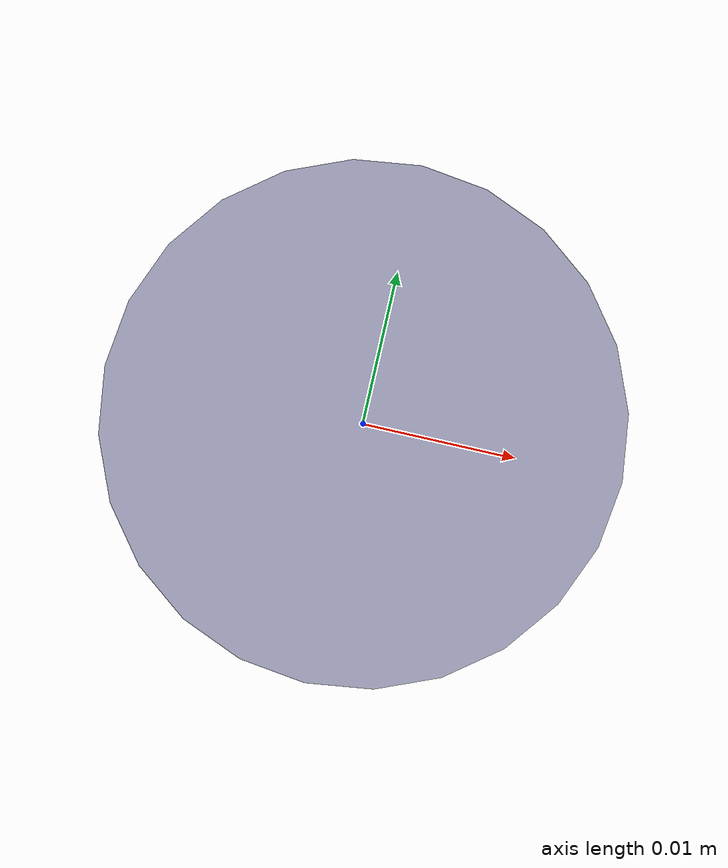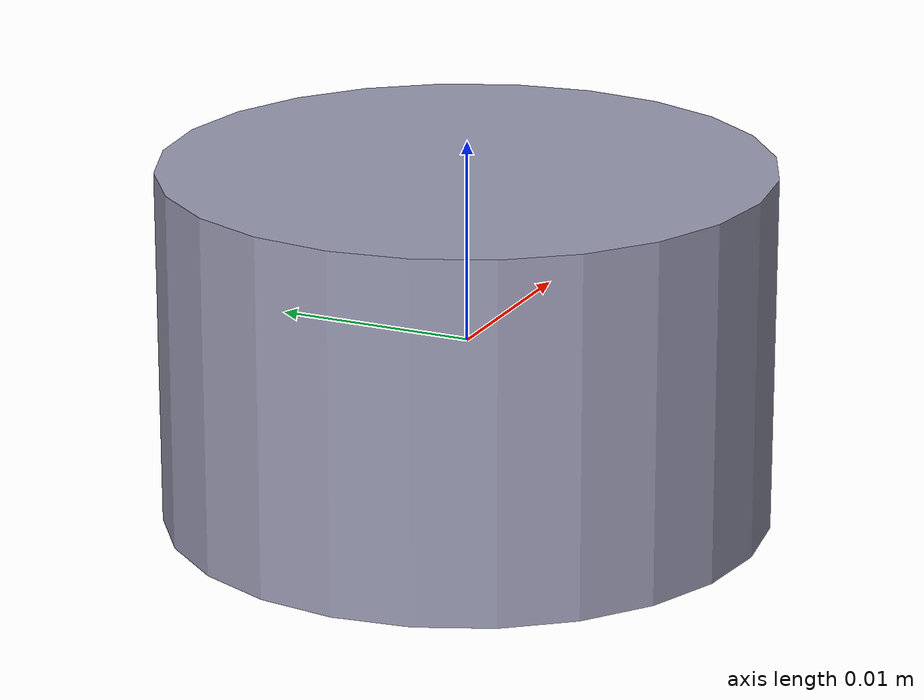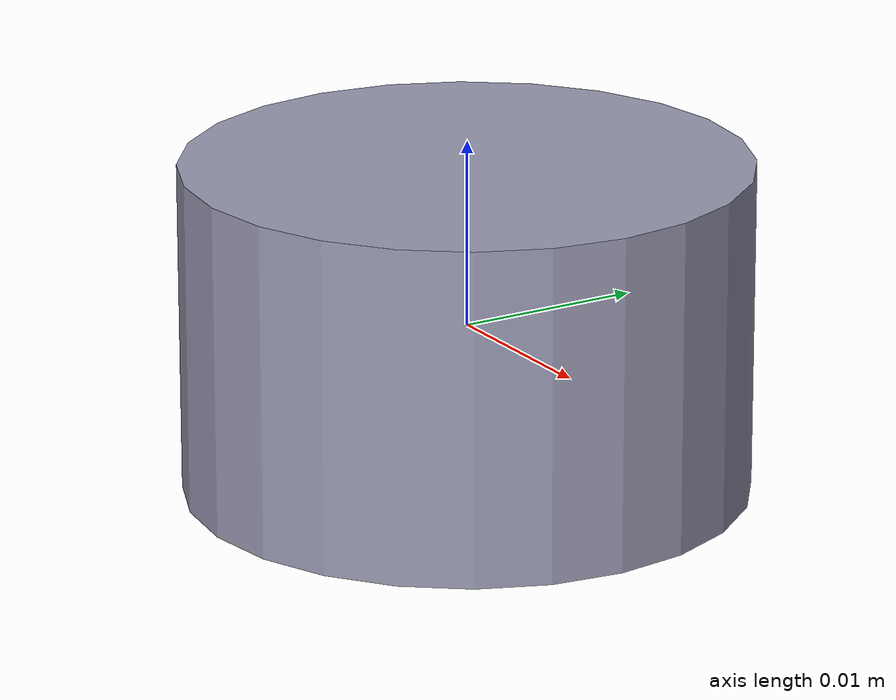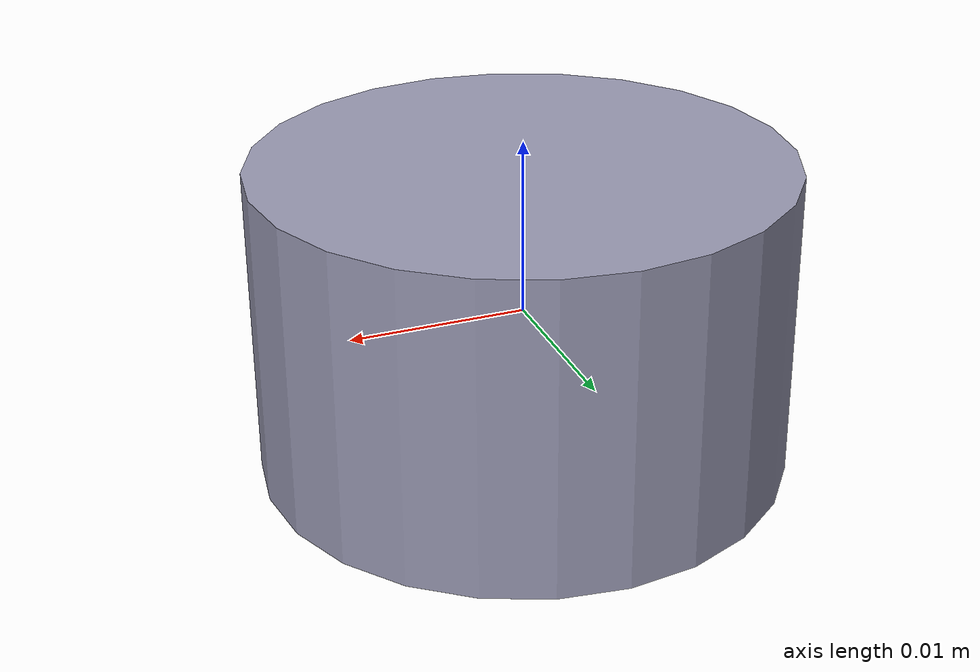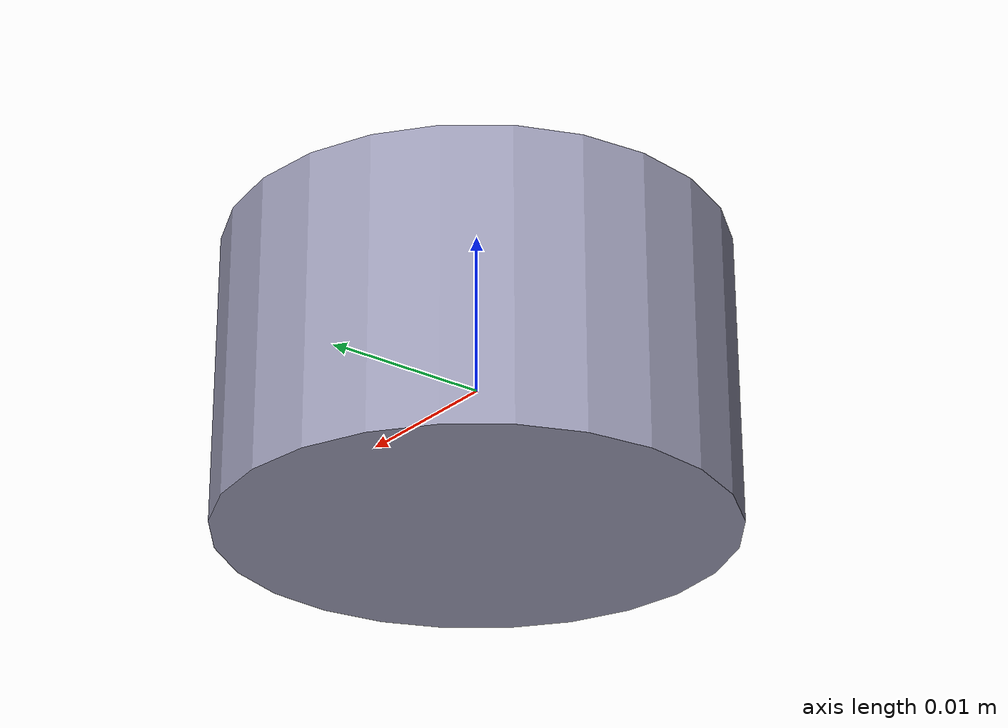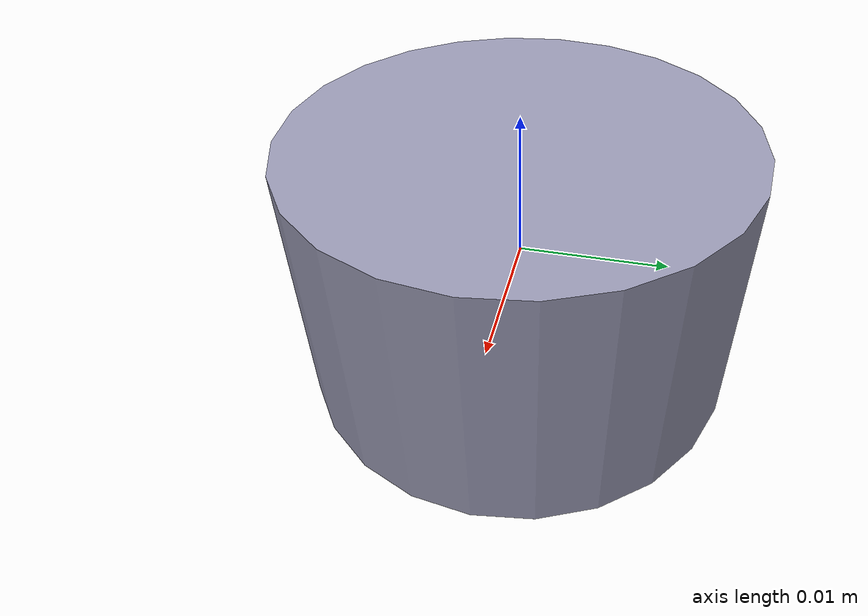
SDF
<?xml version="1.0"?>
<sdf version="1.6">
  <model name="part_100g">
    <link name="link">
      <pose>0 0 0 0 0 0</pose>

      <inertial>
        <mass>0.1</mass>
        <pose>0 0 0 0 0 0</pose>
        <inertia>
          <ixx>6.458e-6</ixx>
          <ixy>0</ixy>
          <ixz>0</ixz>
          <iyy>6.458e-6</iyy>
          <iyz>0</iyz>
          <izz>1.125e-5</izz>
        </inertia>
      </inertial>

      <collision name="collision">
        <geometry>
          <cylinder>
            <radius>0.015</radius>
            <length>0.0177</length>
          </cylinder>
        </geometry>
        <surface>
          <friction>
            <ode>
              <mu>0.8</mu>
              <mu2>0.8</mu2>
            </ode>
          </friction>
          <contact>
            <ode>
              <kp>1000000.0</kp>
              <kd>100.0</kd>
              <max_vel>1.0</max_vel>
              <min_depth>0.001</min_depth>
            </ode>
          </contact>
        </surface>
      </collision>

      <visual name="visual">
        <geometry>
          <cylinder>
            <radius>0.015</radius>
            <length>0.0177</length>
          </cylinder>
        </geometry>
        <material>
          <ambient>0.6 0.6 0.7 1</ambient>
          <diffuse>0.6 0.6 0.7 1</diffuse>
          <specular>0.5 0.5 0.5 1</specular>
        </material>
      </visual>
    </link>
  </model>
</sdf>
